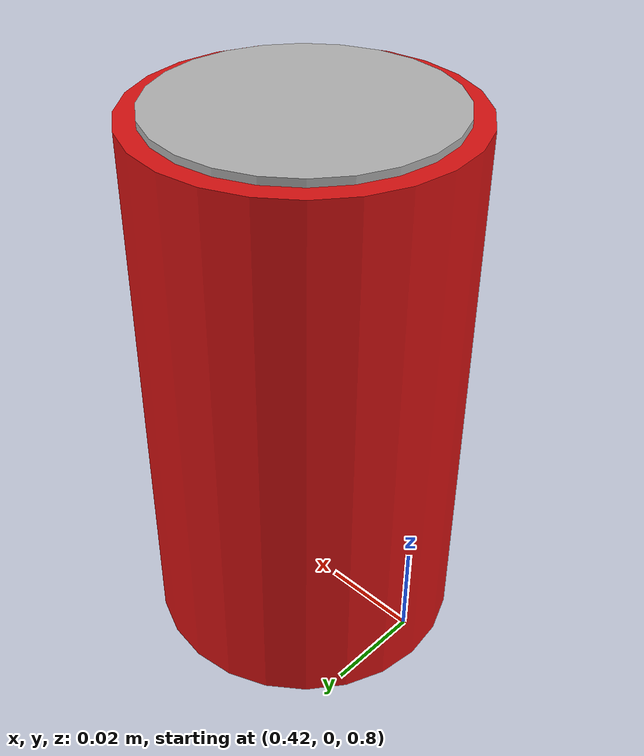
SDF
<?xml version="1.0"?>
<sdf version="1.6">
  <model name="coke_can">
    <static>false</static>
    <pose>0.45 0.0 0.85  0 0 0</pose>

    <link name="can_link">
      <inertial>
        <mass>0.390</mass>     <!-- 390 g — realistic full can weight -->
        <inertia>
          <ixx>0.000285</ixx><ixy>0</ixy><ixz>0</ixz>
          <iyy>0.000285</iyy><iyz>0</iyz>
          <izz>0.000095</izz>
        </inertia>
      </inertial>

      <!-- Collision — cylinder matching a standard 330 ml can -->
      <collision name="can_collision">
        <geometry>
          <cylinder>
            <radius>0.033</radius>   <!-- 66 mm diameter -->
            <length>0.115</length>   <!-- 115 mm height -->
          </cylinder>
        </geometry>
        <surface>
          <friction>
            <ode><mu>0.6</mu><mu2>0.6</mu2></ode>
          </friction>
        </surface>
      </collision>

      <!-- Visual — red body (Coca-Cola red) so it stands out in camera feed -->
      <visual name="can_body">
        <geometry>
          <cylinder>
            <radius>0.033</radius>
            <length>0.115</length>
          </cylinder>
        </geometry>
        <material>
          <ambient>0.85 0.07 0.07 1</ambient>      <!-- Coke red -->
          <diffuse>0.85 0.07 0.07 1</diffuse>
          <specular>0.3 0.3 0.3 1</specular>
        </material>
      </visual>

      <!-- Silver top cap -->
      <visual name="can_top">
        <pose>0 0 0.058  0 0 0</pose>
        <geometry>
          <cylinder>
            <radius>0.029</radius>
            <length>0.002</length>
          </cylinder>
        </geometry>
        <material>
          <ambient>0.7 0.7 0.7 1</ambient>
          <diffuse>0.7 0.7 0.7 1</diffuse>
          <specular>0.9 0.9 0.9 1</specular>
        </material>
      </visual>
    </link>
  </model>
</sdf>
